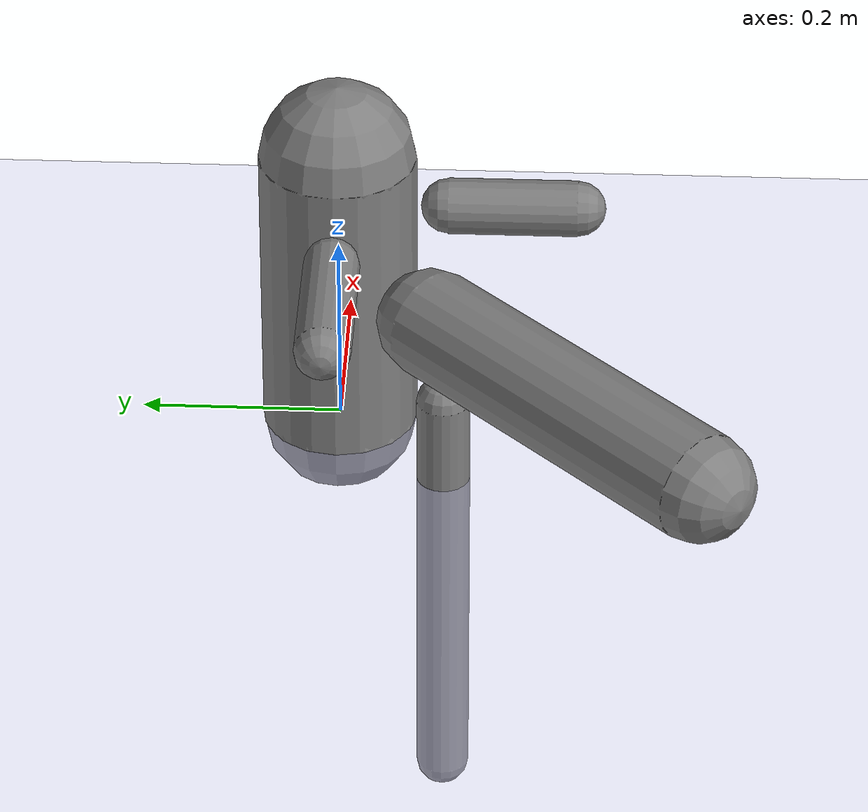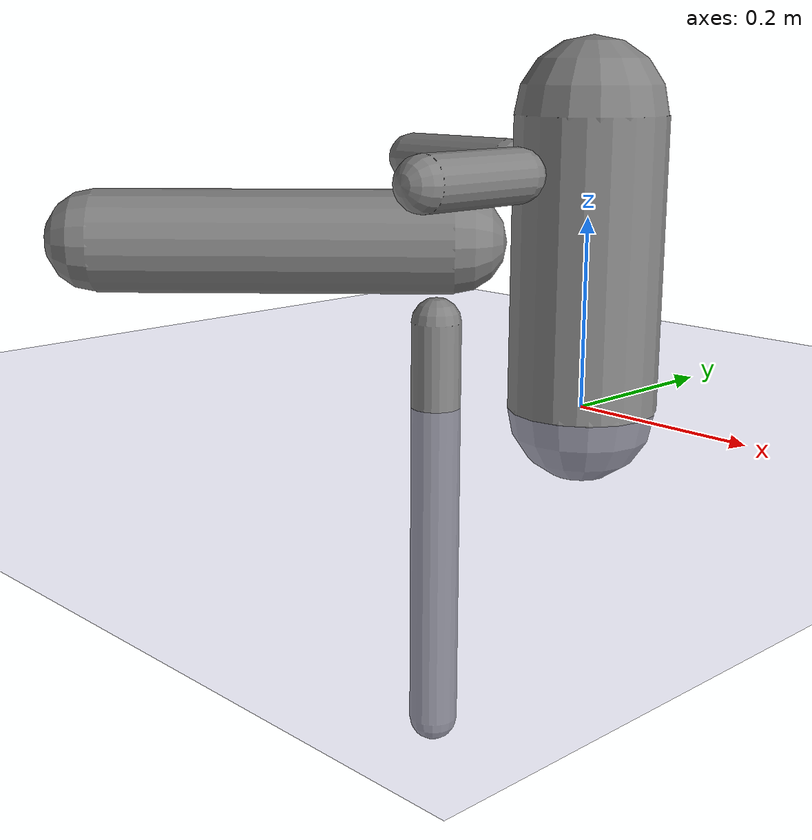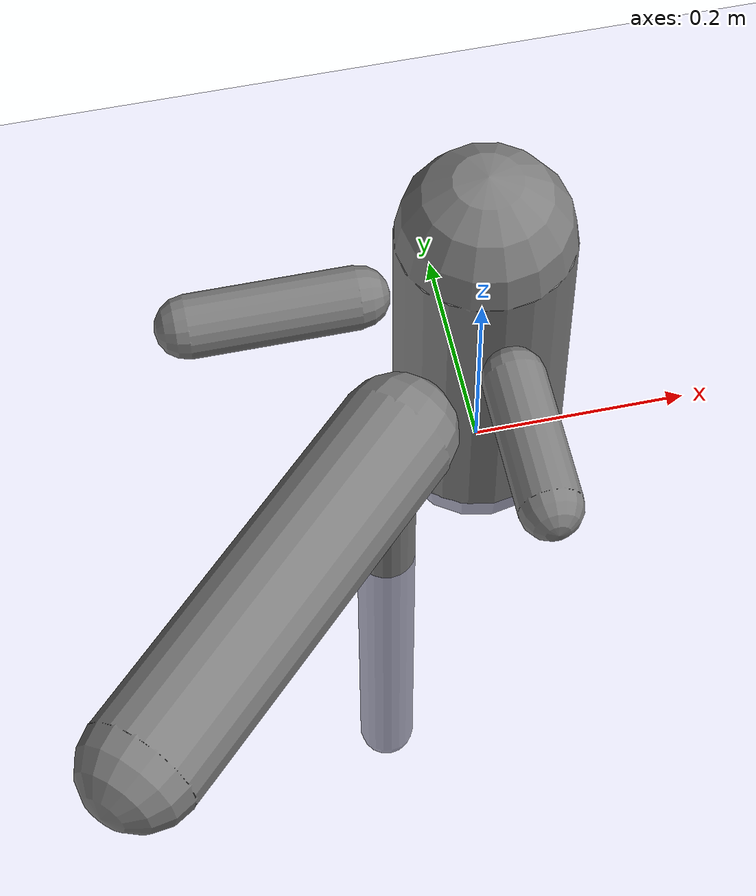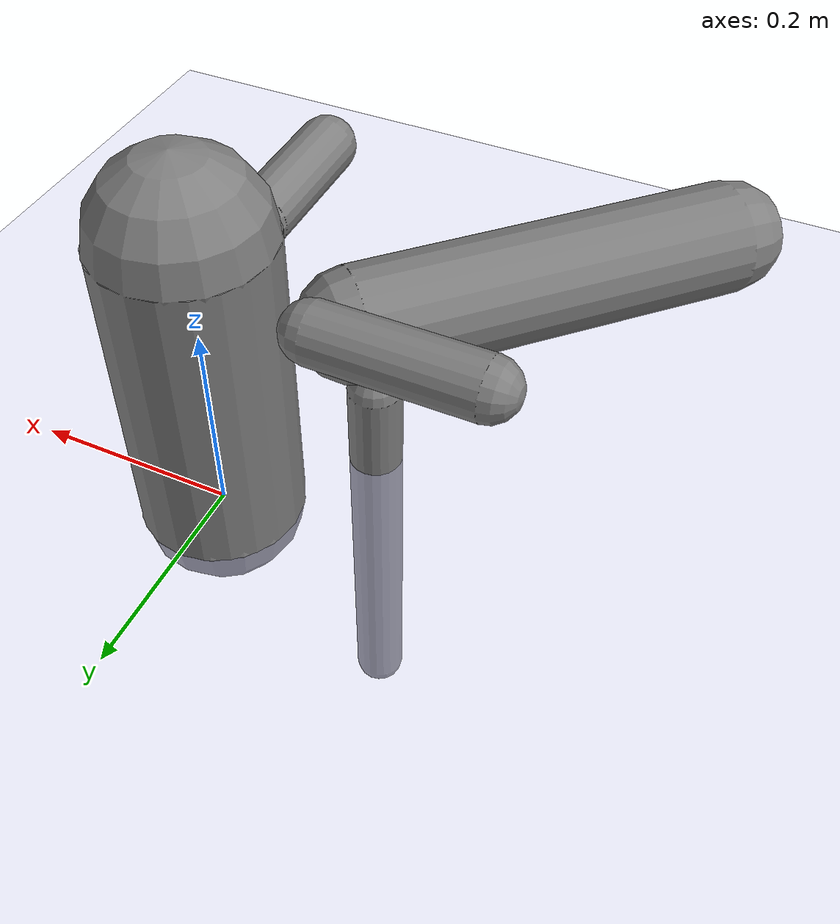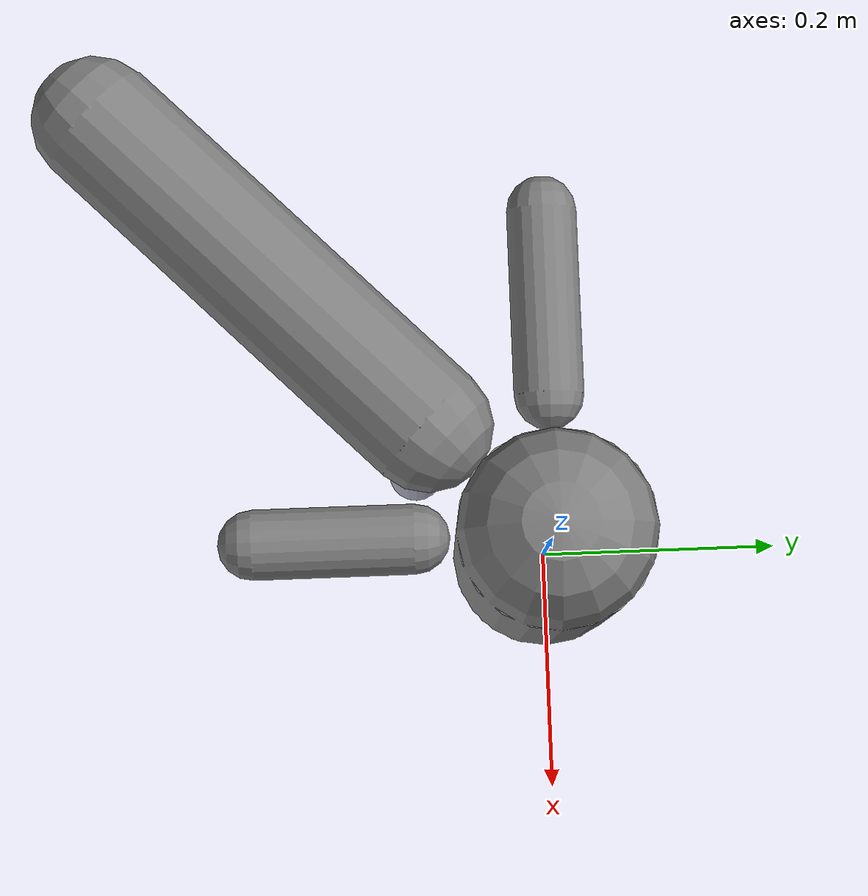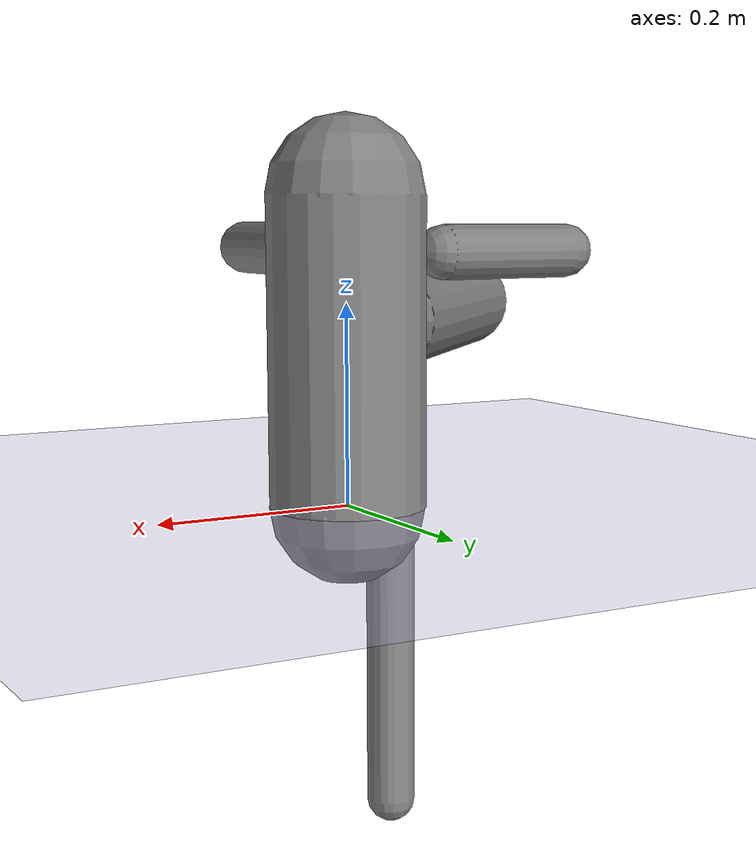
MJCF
<?xml version='1.0' encoding='UTF-8'?>
<mujoco model="robot_model">
  <worldbody>
    <light name="light" pos="0 -3 10" dir="0 0.5 -1" diffuse=".8 .8 .8" specular="0.1 0.1 0.1"/>
    <geom name="floor" type="plane" size="10.0 10.0 0.1" pos="0 0 0" rgba="0.8 0.8 1 1" contype="2" conaffinity="1"/>
    <body name="limb0" pos="0 0 0">
      <geom name="limb0_geom" type="capsule" fromto="0 0 0 0 0 0.30330976003101473" size="0.07807558960802614" density="524.9083851125539" contype="1" conaffinity="2"/>
      <site type="sphere" size="0.01" name="limb0_site0" pos="-0.09605340519408116 -0.09605340519408113 0.1746221293322047" quat="0.7071067811865476 0.4999999999999999 -0.5000000000000001 0.0"/>
      <site type="sphere" size="0.01" name="limb0_site1" pos="-0.10973915745308847 1.343917079160522e-17 0.24735226574653998" quat="0.7071067811865476 -8.659560562354932e-17 -0.7071067811865475 0.0"/>
      <site type="sphere" size="0.01" name="limb0_site2" pos="-2.0160431151594687e-17 -0.10974827553343633 0.2490860448205793" quat="0.7071067811865476 0.7071067811865475 -1.2989340843532398e-16 0.0"/>
      <freejoint name="limb0_root"/>
      <body name="limb1" pos="-0.09605340519408116 -0.09605340519408113 0.1746221293322047" quat="0.7071067811865476 0.4999999999999999 -0.5000000000000001 0.0">
        <geom name="limb1_geom" type="capsule" fromto="0 0 0 0 0 0.3711195112383836" size="0.053764438729561694" density="695.0572133567601" contype="1" conaffinity="2"/>
        <site type="sphere" size="0.01" name="limb1_site0" pos="-0.05964851918874987 -0.059648519188749846 0.017912304026733158" quat="0.7071067811865476 0.4999999999999999 -0.5000000000000001 0.0"/>
        <body name="limb2" pos="-0.05964851918874987 -0.059648519188749846 0.017912304026733158" quat="0.7071067811865476 0.4999999999999999 -0.5000000000000001 0.0">
          <geom name="limb2_geom" type="capsule" fromto="0 0 0 0 0 0.45077315733160433" size="0.02659130608264014" density="1115.7827975094947" contype="1" conaffinity="2"/>
          <joint name="joint_limb1_limb2_0" type="hinge" axis="1 0 0" range="-83.62836535994599 83.62836535994599" damping="5.0"/>
        </body>
        <joint name="joint_limb0_limb1_0" type="hinge" axis="0 1 0" range="-113.6566083474294 113.6566083474294" damping="5.0"/>
      </body>
      <body name="limb3" pos="-0.10973915745308847 1.343917079160522e-17 0.24735226574653998" quat="0.7071067811865476 -8.659560562354932e-17 -0.7071067811865475 0.0">
        <geom name="limb3_geom" type="capsule" fromto="0 0 0 0 0 0.14705663010487965" size="0.02766356784506233" density="804.7781072521468" contype="1" conaffinity="2"/>
        <joint name="joint_limb0_limb3_0" type="hinge" axis="0 0 1" range="-27.51326948727836 27.51326948727836" damping="5.0"/>
      </body>
      <body name="limb4" pos="-2.0160431151594687e-17 -0.10974827553343633 0.2490860448205793" quat="0.7071067811865476 0.7071067811865475 -1.2989340843532398e-16 0.0">
        <geom name="limb4_geom" type="capsule" fromto="0 0 0 0 0 0.12696948819370785" size="0.027672685925410185" density="1018.6116784330146" contype="1" conaffinity="2"/>
        <joint name="joint_limb0_limb4_0" type="hinge" axis="0 1 0" range="-49.40763601682844 49.40763601682844" damping="5.0"/>
      </body>
    </body>
  </worldbody>
  <actuator>
    <position name="position_actuator_joint_limb0_limb1_0" joint="joint_limb0_limb1_0" gear="1.081511317933534" inheritrange="1" forcerange="-20.000595824005522 20.000595824005522" forcelimited="true" kp="100.0"/>
    <position name="position_actuator_joint_limb1_limb2_0" joint="joint_limb1_limb2_0" gear="1.683267733452257" inheritrange="1" forcerange="-6.0258601534112195 6.0258601534112195" forcelimited="true" kp="100.0"/>
    <position name="position_actuator_joint_limb0_limb3_0" joint="joint_limb0_limb3_0" gear="1.326567493689957" inheritrange="1" forcerange="-1.7794749187366463 1.7794749187366463" forcelimited="true" kp="100.0"/>
    <position name="position_actuator_joint_limb0_limb4_0" joint="joint_limb0_limb4_0" gear="0.9156813341554366" inheritrange="1" forcerange="-2.0078028957054825 2.0078028957054825" forcelimited="true" kp="100.0"/>
  </actuator>
  <contact>
    <pair geom1="limb0_geom" geom2="limb1_geom"/>
    <pair geom1="limb1_geom" geom2="limb2_geom"/>
    <pair geom1="limb0_geom" geom2="limb3_geom"/>
    <pair geom1="limb0_geom" geom2="limb4_geom"/>
  </contact>
</mujoco>
